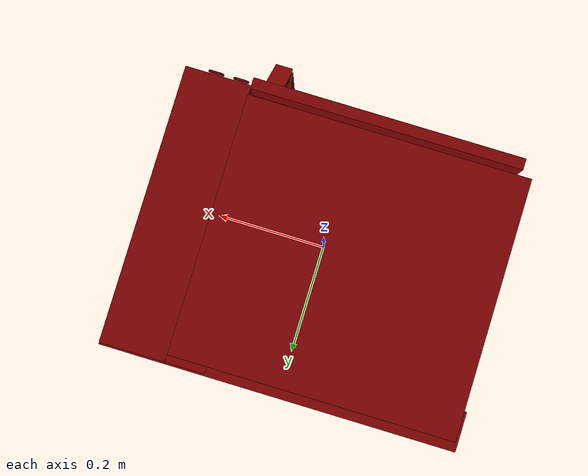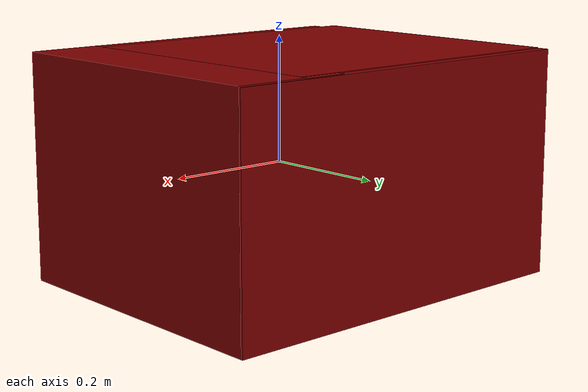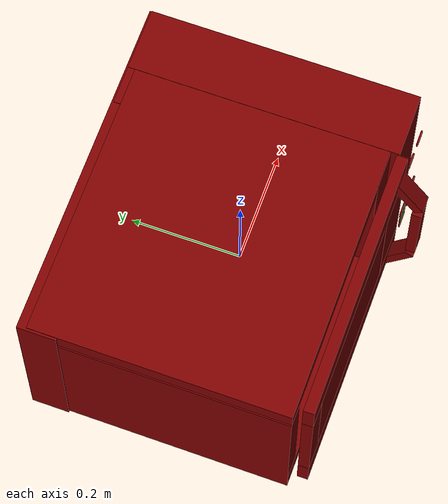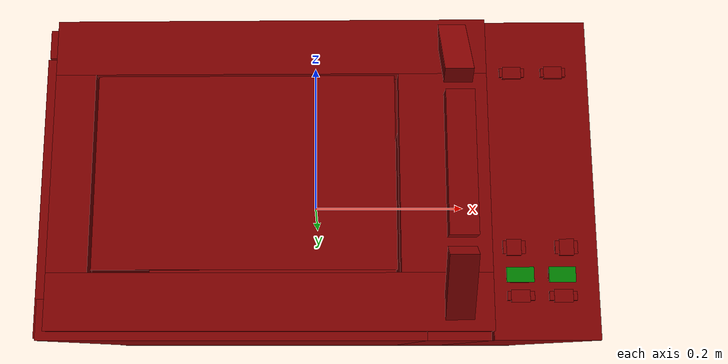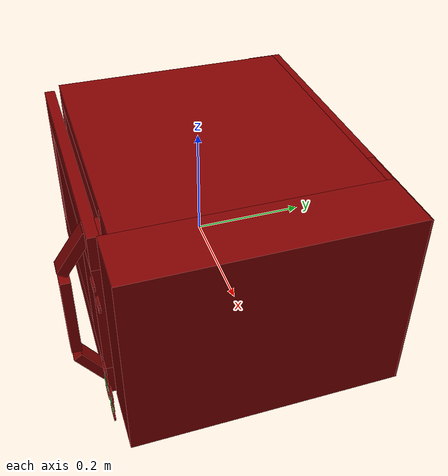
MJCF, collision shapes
<mujoco model="model">
  <compiler angle="radian"/>
  <asset>
    <mesh file="visuals/door.obj" name="door_vis"/>
    <mesh file="visuals/door_Clear.obj" name="door_Clear_vis"/>
    <mesh file="visuals/Body001.obj" name="Body001_vis"/>
    <mesh file="visuals/Button001.obj" name="Button001_vis"/>
    <mesh file="visuals/Button002.obj" name="Button002_vis"/>
    <mesh file="visuals/Button003.obj" name="Button003_vis"/>
    <mesh file="visuals/Button004.obj" name="Button004_vis"/>
    <mesh file="visuals/Button005.obj" name="Button005_vis"/>
    <mesh file="visuals/Button006.obj" name="Button006_vis"/>
    <mesh file="visuals/Button007.obj" name="Button007_vis"/>
    <mesh file="visuals/Button008.obj" name="Button008_vis"/>
    <mesh file="visuals/Disc001.obj" name="Disc001_vis"/>
    <texture file="visuals/T_BC001.png" name="Body001_material" type="2d"/>
    <material name="Body001_material" rgba="1 1 1 1.0" texture="Body001_material" shininess="2" specular="2"/>
    <texture file="visuals/T_BC001.png" name="door_material" type="2d"/>
    <material name="door_material" rgba="1 1 1 1.0" texture="door_material" shininess="2" specular="2"/>
    <texture file="visuals/T_BC001.png" name="door_Clear_material" type="2d"/>
    <material name="door_Clear_material" rgba="1 1 1 0.8553459048271179" texture="door_Clear_material" shininess="1" specular="1"/>
    <texture file="visuals/T_BC001.png" name="Button001_material" type="2d"/>
    <material name="Button001_material" rgba="1 1 1 1.0" texture="Button001_material" shininess="0.2512328028678894" specular="0.3103448502657381"/>
    <texture file="visuals/T_BC001.png" name="Button002_material" type="2d"/>
    <material name="Button002_material" rgba="1 1 1 1.0" texture="Button002_material" shininess="0.2512328028678894" specular="0.3103448502657381"/>
    <texture file="visuals/T_BC001.png" name="Button003_material" type="2d"/>
    <material name="Button003_material" rgba="1 1 1 1.0" texture="Button003_material" shininess="0.2512328028678894" specular="0.3103448502657381"/>
    <texture file="visuals/T_BC001.png" name="Button004_material" type="2d"/>
    <material name="Button004_material" rgba="1 1 1 1.0" texture="Button004_material" shininess="0.2512328028678894" specular="0.3103448502657381"/>
    <texture file="visuals/T_BC001.png" name="Button005_material" type="2d"/>
    <material name="Button005_material" rgba="1 1 1 1.0" texture="Button005_material" shininess="0.2512328028678894" specular="0.3103448502657381"/>
    <texture file="visuals/T_BC001.png" name="Button006_material" type="2d"/>
    <material name="Button006_material" rgba="1 1 1 1.0" texture="Button006_material" shininess="0.2512328028678894" specular="0.3103448502657381"/>
    <texture file="visuals/T_BC001.png" name="Button007_material" type="2d"/>
    <material name="Button007_material" rgba="1 1 1 1.0" texture="Button007_material" shininess="0.2512328028678894" specular="0.3103448502657381"/>
    <texture file="visuals/T_BC001.png" name="Button008_material" type="2d"/>
    <material name="Button008_material" rgba="1 1 1 1.0" texture="Button008_material" shininess="0.2512328028678894" specular="0.3103448502657381"/>
    <texture file="visuals/T_BC001.png" name="Disc001_material" type="2d"/>
    <material name="Disc001_material" rgba="1 1 1 1.0" texture="Disc001_material" shininess="1" specular="1"/>
  </asset>
  <default>
    <default class="visual">
      <geom conaffinity="0" contype="0" group="1" type="mesh"/>
    </default>
    <default class="collision">
      <geom group="0" rgba="0.5 0 0 0.5"/>
    </default>
    <default class="spawn">
      <geom group="0" rgba="1 1 1 0.5" contype="0" conaffinity="0"/>
      <site group="0" rgba="1 1 1 0.5"/>
    </default>
    <default class="region">
      <geom group="1" conaffinity="0" contype="0" rgba="0 1 0 0"/>
    </default>
  </default>
  <worldbody>
    <body>
      <body name="object">
        <geom class="collision" type="box" pos="0.22267630696296692 -0.23341603577136993 -0.11233450472354889" size="0.014708410017192364 0.0004353104450274259 0.00819513387978077" quat="1.0 0.0 0.0 0.0" name="stop_button" rgba="0.0 0.5 0 0.5"/>
        <geom class="collision" type="box" pos="0.26763004064559937 -0.23341603577136993 -0.11233450472354889" size="0.01429767720401287 0.0004353107069619 0.008195137605071068" quat="1.0 0.0 0.0 0.0" name="start_button" rgba="0.0 0.5 0 0.5"/>
        <geom class="collision" type="box" pos="-0.07717756181955338 0.0024911665823310614 -0.12216738611459732" size="0.1406339704990387 0.1406339704990387 0.001430506817996502" quat="1.0 0.0 0.0 0.0" name="tray" rgba="0 1 0 0.5"/>
        <geom mesh="Body001_vis" type="mesh" solimp="0.998 0.998 0.001" solref="0.001 1" density="100" friction="0.95 0.3 0.1" class="visual" material="Body001_material"/>
        <geom class="collision" type="box" pos="-0.0009973121341317892 0.24404658377170563 -0.0018854695372283459" size="0.3122279942035675 0.03466517850756645 0.18011455237865448" quat="1.0 0.0 0.0 0.0"/>
        <geom class="collision" type="box" pos="0.2538035809993744 0.029875073581933975 -0.0008303769864141941" size="0.057803988456726074 0.24577170610427856 0.1808701455593109" quat="1.0 0.0 0.0 0.0"/>
        <geom class="collision" type="box" pos="-0.0009973046835511923 0.031449586153030396 -0.15888184309005737" size="0.30783289670944214 0.2311689555644989 0.022818157449364662" quat="1.0 0.0 0.0 0.0"/>
        <geom class="collision" type="box" pos="-0.29119595885276794 0.0314495787024498 -0.017998265102505684" size="0.019397996366024017 0.2311689555644989 0.16133739054203033" quat="1.0 0.0 0.0 0.0"/>
        <geom class="collision" type="box" pos="-0.0009973046835511923 0.031449586153030396 0.16247427463531494" size="0.30783289670944214 0.2311689555644989 0.017150888219475746" quat="1.0 0.0 0.0 0.0"/>
        <geom class="collision" type="box" pos="0.16087277233600616 0.037744976580142975 -0.0012807155726477504" size="0.03512682020664215 0.23790179193019867 0.18041937053203583" quat="1.0 0.0 0.0 0.0"/>
        <body name="door">
          <joint axis="0.0 0.0 1.0" pos="-0.295602947473526 -0.2165616750717163 0.001789693720638752" limited="true" name="microjoint" range="-1.5707963267948966 0.0" type="hinge" damping="1" frictionloss="1" armature=".01" stiffness="0.05"/>
          <geom mesh="door_vis" type="mesh" solimp="0.998 0.998 0.001" solref="0.001 1" density="100" friction="0.95 0.3 0.1" class="visual" material="door_material"/>
          <geom class="collision" type="box" pos="-0.04774235934019089 -0.22087964415550232 0.1461542397737503" size="0.24249830842018127 0.00989343598484993 0.0317835696041584" quat="1.0 0.0 0.0 0.0"/>
          <geom class="collision" type="box" pos="-0.04774235934019089 -0.22087964415550232 -0.14076998829841614" size="0.24249815940856934 0.009893431328237057 0.031230108812451363" quat="1.0 0.0 0.0 0.0"/>
          <geom class="collision" type="box" pos="0.14533431828022003 -0.22087964415550232 0.0024153348058462143" size="0.04942033439874649 0.009893426671624184 0.11195611208677292" quat="1.0 0.0 0.0 0.0"/>
          <geom class="collision" type="box" pos="-0.26759421825408936 -0.22087964415550232 0.002415318042039871" size="0.0226448941975832 0.00989342201501131 0.11195603013038635" quat="1.0 0.0 0.0 0.0"/>
          <geom class="collision" type="box" pos="0.15714409947395325 -0.27046337723731995 0.0024153206031769514" size="0.015484350733458996 0.008997862227261066 0.07799571007490158" quat="1.0 0.0 0.0 0.0" name="door_handle"/>
          <geom class="collision" type="box" pos="0.15714409947395325 -0.2492614984512329 0.1319640725851059" size="0.042043790221214294 0.008997862227261066 0.015484345145523548" quat="0.6743797659873962 -0.21263112127780914 -0.6743797063827515 0.21263112127780914"/>
          <geom class="collision" type="box" pos="0.15714409947395325 -0.24783329665660858 -0.12287113815546036" size="0.03955378383398056 0.008997862227261066 0.015484345145523548" quat="0.2126319706439972 -0.6743797063827515 -0.2126302570104599 0.6743797063827515"/>
          <body name="door_Clear">
            <geom mesh="door_Clear_vis" type="mesh" solimp="0.998 0.998 0.001" solref="0.001 1" density="100" friction="0.95 0.3 0.1" class="visual" material="door_Clear_material"/>
            <geom class="collision" type="box" pos="-0.07481791824102402 -0.22947996854782104 0.002993716625496745" size="0.1664552092552185 0.000493787054438144 0.10936874151229858" quat="1.0 0.0 0.0 0.0"/>
          </body>
        </body>
        <body name="Button001">
          <joint axis="0.0 1.0 0.0" pos="0.22274360060691833 -0.23268523812294006 -0.11240941286087036" limited="true" name="Button001_joint" range="0.0 0.0012" type="slide" damping="1" frictionloss="1" armature=".01" stiffness="0.05"/>
          <geom mesh="Button001_vis" type="mesh" solimp="0.998 0.998 0.001" solref="0.001 1" density="100" friction="0.95 0.3 0.1" class="visual" material="Button001_material"/>
          <geom class="collision" type="box" pos="0.22212398052215576 -0.23189473152160645 -0.11233450472354889" size="0.010166533291339874 0.0008770723943598568 0.00819506123661995" quat="1.0 0.0 0.0 0.0"/>
          <geom class="collision" type="box" pos="0.2100468873977661 -0.23189473152160645 -0.11233449727296829" size="0.001910414663143456 0.0008770721033215523 0.00635002925992012" quat="1.0 0.0 0.0 0.0"/>
          <geom class="collision" type="box" pos="0.23479828238487244 -0.23189473152160645 -0.11233449727296829" size="0.0025779451243579388 0.000877073616720736 0.006350035313516855" quat="1.0 0.0 0.0 0.0"/>
        </body>
        <body name="Button002">
          <joint axis="0.0 1.0 0.0" pos="0.2673618197441101 -0.23268523812294006 -0.11256683617830276" limited="true" name="Button002_joint" range="0.0 0.0012" type="slide" damping="1" frictionloss="1" armature=".01" stiffness="0.05"/>
          <geom mesh="Button002_vis" type="mesh" solimp="0.998 0.998 0.001" solref="0.001 1" density="100" friction="0.95 0.3 0.1" class="visual" material="Button002_material"/>
          <geom class="collision" type="box" pos="0.2679775059223175 -0.23189473152160645 -0.11233450472354889" size="0.010166540741920471 0.0008770733838900924 0.008195069618523121" quat="1.0 0.0 0.0 0.0"/>
          <geom class="collision" type="box" pos="0.2551935911178589 -0.23189473152160645 -0.11233449727296829" size="0.002617215970531106 0.0008770730928517878 0.006350033450871706" quat="1.0 0.0 0.0 0.0"/>
          <geom class="collision" type="box" pos="0.28014132380485535 -0.23189473152160645 -0.11233449727296829" size="0.002067484427243471 0.0008770740823820233 0.006350037641823292" quat="1.0 0.0 0.0 0.0"/>
        </body>
        <body name="Button003">
          <joint axis="0.0 1.0 0.0" pos="0.22274360060691833 -0.23268523812294006 -0.13494890928268433" limited="true" name="Button003_joint" range="0.0 0.0012" type="slide" damping="1" frictionloss="1" armature=".01" stiffness="0.05"/>
          <geom mesh="Button003_vis" type="mesh" solimp="0.998 0.998 0.001" solref="0.001 1" density="100" friction="0.95 0.3 0.1" class="visual" material="Button003_material"/>
          <geom class="collision" type="box" pos="0.22212398052215576 -0.23243720829486847 -0.13500073552131653" size="0.010166557505726814 0.0014195520197972655 0.006742279976606369" quat="1.0 0.0 0.0 0.0"/>
          <geom class="collision" type="box" pos="0.2100704461336136 -0.23243720829486847 -0.13500073552131653" size="0.0018868619808927178 0.0014195517869666219 0.0048971823416650295" quat="1.0 0.0 0.0 0.0"/>
          <geom class="collision" type="box" pos="0.23467262089252472 -0.23243720829486847 -0.13500073552131653" size="0.0024522950407117605 0.0014195522526279092 0.004897184204310179" quat="1.0 0.0 0.0 0.0"/>
        </body>
        <body name="Button004">
          <joint axis="0.0 1.0 0.0" pos="0.2673617899417877 -0.23268523812294006 -0.13510611653327942" limited="true" name="Button004_joint" range="0.0 0.0012" type="slide" damping="1" frictionloss="1" armature=".01" stiffness="0.05"/>
          <geom mesh="Button004_vis" type="mesh" solimp="0.998 0.998 0.001" solref="0.001 1" density="100" friction="0.95 0.3 0.1" class="visual" material="Button004_material"/>
          <geom class="collision" type="box" pos="0.2679775059223175 -0.23243720829486847 -0.13500073552131653" size="0.010166569612920284 0.0014195535331964493 0.006742286030203104" quat="1.0 0.0 0.0 0.0"/>
          <geom class="collision" type="box" pos="0.25531139969825745 -0.23243720829486847 -0.13500073552131653" size="0.0024994146078824997 0.0014195533003658056 0.0048971883952617645" quat="1.0 0.0 0.0 0.0"/>
          <geom class="collision" type="box" pos="0.28019630908966064 -0.23243720829486847 -0.13500073552131653" size="0.00212246086448431 0.001419553766027093 0.004897190257906914" quat="1.0 0.0 0.0 0.0"/>
        </body>
        <body name="Button005">
          <joint axis="0.0 1.0 0.0" pos="0.21729648113250732 -0.23268522322177887 -0.08271323144435883" limited="true" name="Button005_joint" range="0.0 0.0012" type="slide" damping="1" frictionloss="1" armature=".01" stiffness="0.05"/>
          <geom mesh="Button005_vis" type="mesh" solimp="0.998 0.998 0.001" solref="0.001 1" density="100" friction="0.95 0.3 0.1" class="visual" material="Button005_material"/>
          <geom class="collision" type="box" pos="0.2168622761964798 -0.23243720829486847 -0.08272663503885269" size="0.007967653684318066 0.001419555046595633 0.008808650076389313" quat="1.0 0.0 0.0 0.0"/>
          <geom class="collision" type="box" pos="0.20698410272598267 -0.23243720829486847 -0.0827266275882721" size="0.0019104268867522478 0.0014195548137649894 0.006963553372770548" quat="1.0 0.0 0.0 0.0"/>
          <geom class="collision" type="box" pos="0.22702351212501526 -0.23243720829486847 -0.0827266275882721" size="0.00226382352411747 0.0014195552794262767 0.006963557563722134" quat="1.0 0.0 0.0 0.0"/>
        </body>
        <body name="Button006">
          <joint axis="0.0 1.0 0.0" pos="0.272964745759964 -0.23268522322177887 -0.08271323144435883" limited="true" name="Button006_joint" range="0.0 0.0012" type="slide" damping="1" frictionloss="1" armature=".01" stiffness="0.05"/>
          <geom mesh="Button006_vis" type="mesh" solimp="0.998 0.998 0.001" solref="0.001 1" density="100" friction="0.95 0.3 0.1" class="visual" material="Button006_material"/>
          <geom class="collision" type="box" pos="0.27341917157173157 -0.23243720829486847 -0.08272663503885269" size="0.007833504118025303 0.0014195565599948168 0.008808662183582783" quat="1.0 0.0 0.0 0.0"/>
          <geom class="collision" type="box" pos="0.2632824778556824 -0.23243720829486847 -0.0827266275882721" size="0.0023030973970890045 0.0014195563271641731 0.006963565479964018" quat="1.0 0.0 0.0 0.0"/>
          <geom class="collision" type="box" pos="0.2832499146461487 -0.23243720829486847 -0.0827266275882721" size="0.002067496534436941 0.0014195567928254604 0.006963569670915604" quat="1.0 0.0 0.0 0.0"/>
        </body>
        <body name="Button007">
          <joint axis="0.0 1.0 0.0" pos="0.22215932607650757 -0.23268520832061768 0.11361885815858841" limited="true" name="Button007_joint" range="0.0 0.0012" type="slide" damping="1" frictionloss="1" armature=".01" stiffness="0.05"/>
          <geom mesh="Button007_vis" type="mesh" solimp="0.998 0.998 0.001" solref="0.001 1" density="100" friction="0.95 0.3 0.1" class="visual" material="Button007_material"/>
          <geom class="collision" type="box" pos="0.22212398052215576 -0.23243720829486847 0.11363086849451065" size="0.010166509076952934 0.0014195460826158524 0.006742256227880716" quat="1.0 0.0 0.0 0.0"/>
          <geom class="collision" type="box" pos="0.21016468107700348 -0.23243720829486847 0.11363086849451065" size="0.0017926075961440802 0.0014195457333698869 0.0048971581272780895" quat="1.0 0.0 0.0 0.0"/>
          <geom class="collision" type="box" pos="0.23401294648647308 -0.23243720829486847 0.11363086849451065" size="0.0017926086438819766 0.0014195461990311742 0.004897159989923239" quat="1.0 0.0 0.0 0.0"/>
        </body>
        <body name="Button008">
          <joint axis="0.0 1.0 0.0" pos="0.2679518163204193 -0.23268520832061768 0.11358825117349625" limited="true" name="Button008_joint" range="0.0 0.0012" type="slide" damping="1" frictionloss="1" armature=".01" stiffness="0.05"/>
          <geom mesh="Button008_vis" type="mesh" solimp="0.998 0.998 0.001" solref="0.001 1" density="100" friction="0.95 0.3 0.1" class="visual" material="Button008_material"/>
          <geom class="collision" type="box" pos="0.2679775059223175 -0.23243720829486847 0.11363086849451065" size="0.010166521184146404 0.001419547596015036 0.006742262281477451" quat="1.0 0.0 0.0 0.0"/>
          <geom class="collision" type="box" pos="0.25601819157600403 -0.23243720829486847 0.11363086849451065" size="0.0017926106229424477 0.0014195472467690706 0.0048971641808748245" quat="1.0 0.0 0.0 0.0"/>
          <geom class="collision" type="box" pos="0.27986645698547363 -0.23243720829486847 0.11363086849451065" size="0.001792611670680344 0.001419547712430358 0.004897166043519974" quat="1.0 0.0 0.0 0.0"/>
        </body>
        <body name="Disc001">
          <joint axis="0.0 0.0 1.0" pos="-0.07717746496200562 0.0024914962705224752 -0.12765637040138245" limited="false" name="Disc001_joint" range="0 360" type="hinge" damping="1" frictionloss="1" armature=".01" stiffness="0.05"/>
          <geom mesh="Disc001_vis" type="mesh" solimp="0.998 0.998 0.001" solref="0.001 1" density="100" friction="0.95 0.3 0.1" class="visual" material="Disc001_material"/>
          <geom class="collision" type="cylinder" pos="-0.07717756181955338 0.0024911672808229923 -0.12901638448238373" size="0.14063645899295807 0.0035976048093289137" quat="1.0 0.0 0.0 0.0"/>
        </body>
        <geom class="region" name="reg_main" type="box" pos="0.0 0.024232707917690277 -3.725290298461914e-09" size="0.315000057220459 0.25500571727752686 0.18200001120567322"/>
        <geom class="region" name="reg_int" type="box" pos="-0.07415767386555672 0.006228514015674591 0.003047645092010498" size="0.1927899532020092 0.1980602666735649 0.13422510027885437"/>
      </body>
    </body>
  </worldbody>
  <actuator>
    <motor name="microjoint_actuator" joint="microjoint" gear="10"/>
    <motor name="Button001_joint_actuator" joint="Button001_joint" gear="0.5"/>
    <motor name="Button002_joint_actuator" joint="Button002_joint" gear="0.5"/>
    <motor name="Button003_joint_actuator" joint="Button003_joint" gear="0.5"/>
    <motor name="Button004_joint_actuator" joint="Button004_joint" gear="0.5"/>
    <motor name="Button005_joint_actuator" joint="Button005_joint" gear="0.5"/>
    <motor name="Button006_joint_actuator" joint="Button006_joint" gear="0.5"/>
    <motor name="Button007_joint_actuator" joint="Button007_joint" gear="0.5"/>
    <motor name="Button008_joint_actuator" joint="Button008_joint" gear="0.5"/>
    <motor name="Disc001_joint_actuator" joint="Disc001_joint" gear="20"/>
  </actuator>
</mujoco>
